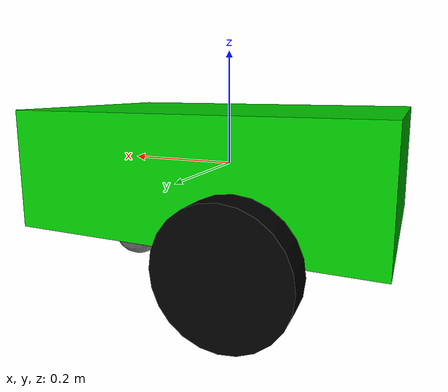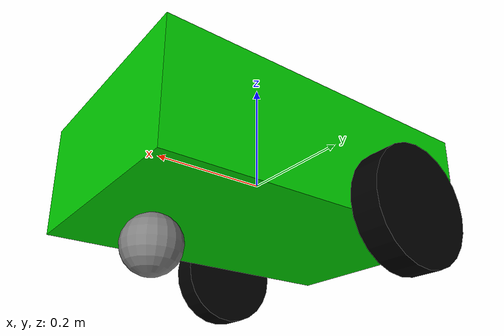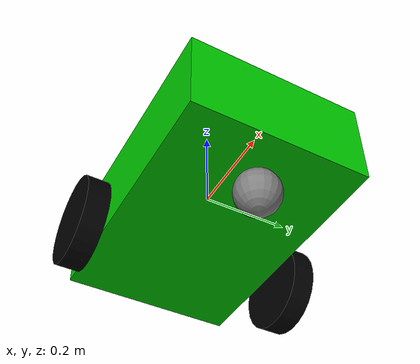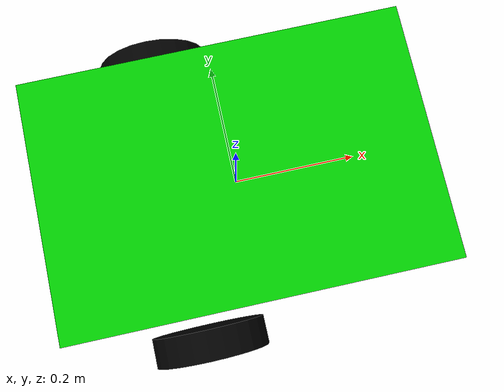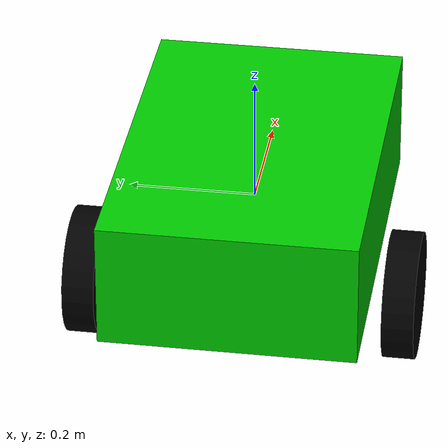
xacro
<?xml version="1.0"?>
<robot xmlns:xacro="http://www.ros.org/wiki/xacro" name="simple_diff_drive_robot_xacro">

  <!-- Constants -->
  <xacro:property name="PI" value="3.1415926535897931"/>

  <!-- Wheel macro -->
  <xacro:macro name="wheel" params="prefix reflect">
    <link name="${prefix}_wheel">
      <visual>
        <geometry>
          <cylinder radius="0.1" length="0.05"/>
        </geometry>
        <material name="black">
          <color rgba="0 0 0 1"/>
        </material>
      </visual>
      <collision>
        <geometry>
          <cylinder radius="0.1" length="0.05"/>
        </geometry>
      </collision>
      <inertial>
        <mass value="0.5"/>
        <inertia ixx="0.001" ixy="0.0" ixz="0.0" iyy="0.001" iyz="0.0" izz="0.002"/>
      </inertial>
    </link>

    <joint name="${prefix}_wheel_joint" type="continuous">
      <parent link="base_link"/>
      <child link="${prefix}_wheel"/>
      <origin xyz="-0.1 ${reflect * 0.25} -0.1" rpy="${PI/2} 0 0"/>
      <axis xyz="0 0 1"/>
    </joint>
  </xacro:macro>

  <!-- Base link -->
  <link name="base_link">
    <visual>
      <geometry>
        <box size="0.6 0.4 0.2"/>
      </geometry>
      <material name="green">
        <color rgba="0 0.8 0 1"/>
      </material>
    </visual>
    <collision>
      <geometry>
        <box size="0.6 0.4 0.2"/>
      </geometry>
    </collision>
    <inertial>
      <mass value="10.0"/>
      <inertia ixx="1.0" ixy="0.0" ixz="0.0" iyy="1.5" iyz="0.0" izz="2.0"/>
    </inertial>
  </link>

  <!-- Use the wheel macro -->
  <xacro:wheel prefix="left" reflect="1"/>
  <xacro:wheel prefix="right" reflect="-1"/>

  <!-- Castor wheel -->
  <link name="caster_wheel">
    <visual>
      <geometry>
        <sphere radius="0.05"/>
      </geometry>
      <material name="gray">
        <color rgba="0.5 0.5 0.5 1"/>
      </material>
    </visual>
    <collision>
      <geometry>
        <sphere radius="0.05"/>
      </geometry>
    </collision>
    <inertial>
      <mass value="0.1"/>
      <inertia ixx="0.0001" ixy="0.0" ixz="0.0" iyy="0.0001" iyz="0.0" izz="0.0001"/>
    </inertial>
  </link>

  <joint name="caster_wheel_joint" type="fixed">
    <parent link="base_link"/>
    <child link="caster_wheel"/>
    <origin xyz="0.2 0 -0.15"/>
  </joint>

</robot>
